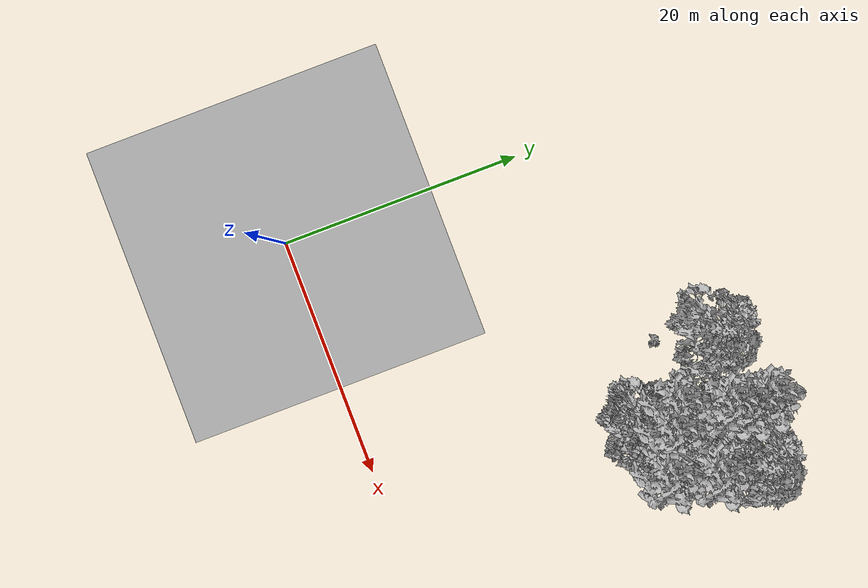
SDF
<sdf version="1.7">
 <world name="default">
  <model name="ground_plane">
   <static>1</static>
   <link name="link">
    <collision name="collision">
     <pose>-50 0 0 0 -0 0</pose>
     <geometry><plane><normal>0 0 1</normal><size>80 80</size></plane></geometry>
     <surface><contact><ode><min_depth>0.01</min_depth><max_vel>0</max_vel></ode></contact></surface>
    </collision>
    <visual name="grass">
     <cast_shadows>0</cast_shadows>
     <geometry>
      <mesh>
       <scale>0.46714285714285714 0.46714285714285714 0.1</scale>
       <uri>file://grass_plane/meshes/grass_plane.dae</uri>
      </mesh>
     </geometry>
    </visual>
   </link>
  </model>
  <model name="Tree 56">
   <static>1</static>
   <pose>26.8419181199542 24.100557964504972 0 1.57079 -0 0</pose>
   <link name="link">
    <collision name="collision">
     <geometry><mesh><scale>3.5 5 3.5</scale><uri>model://tree_9/meshes/tree_9.obj</uri></mesh></geometry>
    </collision>
    <visual name="visual">
     <geometry><mesh><scale>3.5 5 3.5</scale><uri>model://tree_9/meshes/tree_9.obj</uri></mesh></geometry>
    </visual>
   </link>
  </model>
  <model name="Tree 87">
   <static>1</static>
   <pose>22.78816601589846 21.27665080207681 0 1.57079 -0 0</pose>
   <link name="link">
    <collision name="collision">
     <geometry><mesh><scale>3.5 5 3.5</scale><uri>model://tree_2/meshes/tree_2.obj</uri></mesh></geometry>
    </collision>
    <visual name="visual">
     <geometry><mesh><scale>3.5 5 3.5</scale><uri>model://tree_2/meshes/tree_2.obj</uri></mesh></geometry>
    </visual>
   </link>
  </model>
  <model name="Tree 125">
   <static>1</static>
   <pose>23.563411487849734 25.7993419026497 0 1.57079 -0 0</pose>
   <link name="link">
    <collision name="collision">
     <geometry><mesh><scale>3.5 5 3.5</scale><uri>model://tree_2/meshes/tree_2.obj</uri></mesh></geometry>
    </collision>
    <visual name="visual">
     <geometry><mesh><scale>3.5 5 3.5</scale><uri>model://tree_2/meshes/tree_2.obj</uri></mesh></geometry>
    </visual>
   </link>
  </model>
  <model name="Tree 151">
   <static>1</static>
   <pose>28.45676120408301 28.09795732798304 0 1.57079 -0 0</pose>
   <link name="link">
    <collision name="collision">
     <geometry><mesh><scale>3.5 5 3.5</scale><uri>model://tree_2/meshes/tree_2.obj</uri></mesh></geometry>
    </collision>
    <visual name="visual">
     <geometry><mesh><scale>3.5 5 3.5</scale><uri>model://tree_2/meshes/tree_2.obj</uri></mesh></geometry>
    </visual>
   </link>
  </model>
  <model name="Tree 287">
   <static>1</static>
   <pose>18.098758817420496 28.498043613554245 0 1.57079 -0 0</pose>
   <link name="link">
    <collision name="collision">
     <geometry><mesh><scale>3.5 5 3.5</scale><uri>model://tree_2/meshes/tree_2.obj</uri></mesh></geometry>
    </collision>
    <visual name="visual">
     <geometry><mesh><scale>3.5 5 3.5</scale><uri>model://tree_2/meshes/tree_2.obj</uri></mesh></geometry>
    </visual>
   </link>
  </model>
  <model name="Tree 401">
   <static>1</static>
   <pose>25.771348527440637 20.819663443336125 0 1.57079 -0 0</pose>
   <link name="link">
    <collision name="collision">
     <geometry><mesh><scale>3.5 5 3.5</scale><uri>model://tree_9/meshes/tree_9.obj</uri></mesh></geometry>
    </collision>
    <visual name="visual">
     <geometry><mesh><scale>3.5 5 3.5</scale><uri>model://tree_9/meshes/tree_9.obj</uri></mesh></geometry>
    </visual>
   </link>
  </model>
  <model name="Tree 456">
   <static>1</static>
   <pose>21.3310710383384 23.11955921221177 0 1.57079 -0 0</pose>
   <link name="link">
    <collision name="collision">
     <geometry><mesh><scale>3.5 5 3.5</scale><uri>model://tree_9/meshes/tree_9.obj</uri></mesh></geometry>
    </collision>
    <visual name="visual">
     <geometry><mesh><scale>3.5 5 3.5</scale><uri>model://tree_9/meshes/tree_9.obj</uri></mesh></geometry>
    </visual>
   </link>
  </model>
  <model name="Tree 461">
   <static>1</static>
   <pose>26.076442171564878 25.972090173292486 0 1.57079 -0 0</pose>
   <link name="link">
    <collision name="collision">
     <geometry><mesh><scale>3.5 5 3.5</scale><uri>model://tree_2/meshes/tree_2.obj</uri></mesh></geometry>
    </collision>
    <visual name="visual">
     <geometry><mesh><scale>3.5 5 3.5</scale><uri>model://tree_2/meshes/tree_2.obj</uri></mesh></geometry>
    </visual>
   </link>
  </model>
  <model name="Tree 519">
   <static>1</static>
   <pose>23.09814041136307 27.744594299065383 0 1.57079 -0 0</pose>
   <link name="link">
    <collision name="collision">
     <geometry><mesh><scale>3.5 5 3.5</scale><uri>model://tree_9/meshes/tree_9.obj</uri></mesh></geometry>
    </collision>
    <visual name="visual">
     <geometry><mesh><scale>3.5 5 3.5</scale><uri>model://tree_9/meshes/tree_9.obj</uri></mesh></geometry>
    </visual>
   </link>
  </model>
  <model name="Tree 529">
   <static>1</static>
   <pose>22.986148293917573 22.13008729581454 0 1.57079 -0 0</pose>
   <link name="link">
    <collision name="collision">
     <geometry><mesh><scale>3.5 5 3.5</scale><uri>model://tree_9/meshes/tree_9.obj</uri></mesh></geometry>
    </collision>
    <visual name="visual">
     <geometry><mesh><scale>3.5 5 3.5</scale><uri>model://tree_9/meshes/tree_9.obj</uri></mesh></geometry>
    </visual>
   </link>
  </model>
  <model name="Tree 544">
   <static>1</static>
   <pose>23.008891143314855 29.243552274128973 0 1.57079 -0 0</pose>
   <link name="link">
    <collision name="collision">
     <geometry><mesh><scale>3.5 5 3.5</scale><uri>model://tree_9/meshes/tree_9.obj</uri></mesh></geometry>
    </collision>
    <visual name="visual">
     <geometry><mesh><scale>3.5 5 3.5</scale><uri>model://tree_9/meshes/tree_9.obj</uri></mesh></geometry>
    </visual>
   </link>
  </model>
  <model name="Tree 612">
   <static>1</static>
   <pose>22.989815960662696 21.089926849566154 0 1.57079 -0 0</pose>
   <link name="link">
    <collision name="collision">
     <geometry><mesh><scale>3.5 5 3.5</scale><uri>model://tree_2/meshes/tree_2.obj</uri></mesh></geometry>
    </collision>
    <visual name="visual">
     <geometry><mesh><scale>3.5 5 3.5</scale><uri>model://tree_2/meshes/tree_2.obj</uri></mesh></geometry>
    </visual>
   </link>
  </model>
  <model name="Tree 626">
   <static>1</static>
   <pose>22.577000726521923 26.557971485517143 0 1.57079 -0 0</pose>
   <link name="link">
    <collision name="collision">
     <geometry><mesh><scale>3.5 5 3.5</scale><uri>model://tree_9/meshes/tree_9.obj</uri></mesh></geometry>
    </collision>
    <visual name="visual">
     <geometry><mesh><scale>3.5 5 3.5</scale><uri>model://tree_9/meshes/tree_9.obj</uri></mesh></geometry>
    </visual>
   </link>
  </model>
  <model name="Bush 33">
   <static>1</static>
   <pose>28.90497481933609 22.65355632355721 0 1.57079 -0 0</pose>
   <link name="link">
    <collision name="collision">
     <geometry><mesh><scale>2 2 2</scale><uri>model://bush_2/meshes/bush_2.obj</uri></mesh></geometry>
     <surface><contact><collide_without_contact>false</collide_without_contact></contact></surface>
    </collision>
    <visual name="visual">
     <geometry><mesh><scale>2 2 2</scale><uri>model://bush_2/meshes/bush_2.obj</uri></mesh></geometry>
    </visual>
   </link>
  </model>
  <model name="Bush 46">
   <static>1</static>
   <pose>25.144883163469864 28.69816003222303 0 1.57079 -0 0</pose>
   <link name="link">
    <collision name="collision">
     <geometry><mesh><scale>2 2 2</scale><uri>model://bush_2/meshes/bush_2.obj</uri></mesh></geometry>
     <surface><contact><collide_without_contact>false</collide_without_contact></contact></surface>
    </collision>
    <visual name="visual">
     <geometry><mesh><scale>2 2 2</scale><uri>model://bush_2/meshes/bush_2.obj</uri></mesh></geometry>
    </visual>
   </link>
  </model>
  <model name="Bush 56">
   <static>1</static>
   <pose>18.145638563728816 28.71315515384714 0 1.57079 -0 0</pose>
   <link name="link">
    <collision name="collision">
     <geometry><mesh><scale>2 2 2</scale><uri>model://bush_4/meshes/bush_4.obj</uri></mesh></geometry>
     <surface><contact><collide_without_contact>false</collide_without_contact></contact></surface>
    </collision>
    <visual name="visual">
     <geometry><mesh><scale>2 2 2</scale><uri>model://bush_4/meshes/bush_4.obj</uri></mesh></geometry>
    </visual>
   </link>
  </model>
  <model name="Bush 205">
   <static>1</static>
   <pose>22.69298554017471 26.118050882055897 0 1.57079 -0 0</pose>
   <link name="link">
    <collision name="collision">
     <geometry><mesh><scale>2 2 2</scale><uri>model://bush_1/meshes/bush_1.obj</uri></mesh></geometry>
     <surface><contact><collide_without_contact>false</collide_without_contact></contact></surface>
    </collision>
    <visual name="visual">
     <geometry><mesh><scale>2 2 2</scale><uri>model://bush_1/meshes/bush_1.obj</uri></mesh></geometry>
    </visual>
   </link>
  </model>
  <model name="Bush 229">
   <static>1</static>
   <pose>18.05985762181374 25.2194641778963 0 1.57079 -0 0</pose>
   <link name="link">
    <collision name="collision">
     <geometry><mesh><scale>2 2 2</scale><uri>model://bush_2/meshes/bush_2.obj</uri></mesh></geometry>
     <surface><contact><collide_without_contact>false</collide_without_contact></contact></surface>
    </collision>
    <visual name="visual">
     <geometry><mesh><scale>2 2 2</scale><uri>model://bush_2/meshes/bush_2.obj</uri></mesh></geometry>
    </visual>
   </link>
  </model>
  <model name="Bush 340">
   <static>1</static>
   <pose>23.78911932566855 26.351078820995312 0 1.57079 -0 0</pose>
   <link name="link">
    <collision name="collision">
     <geometry><mesh><scale>2 2 2</scale><uri>model://bush_2/meshes/bush_2.obj</uri></mesh></geometry>
     <surface><contact><collide_without_contact>false</collide_without_contact></contact></surface>
    </collision>
    <visual name="visual">
     <geometry><mesh><scale>2 2 2</scale><uri>model://bush_2/meshes/bush_2.obj</uri></mesh></geometry>
    </visual>
   </link>
  </model>
  <model name="Bush 418">
   <static>1</static>
   <pose>24.527240530948987 26.264922154316068 0 1.57079 -0 0</pose>
   <link name="link">
    <collision name="collision">
     <geometry><mesh><scale>2 2 2</scale><uri>model://bush_1/meshes/bush_1.obj</uri></mesh></geometry>
     <surface><contact><collide_without_contact>false</collide_without_contact></contact></surface>
    </collision>
    <visual name="visual">
     <geometry><mesh><scale>2 2 2</scale><uri>model://bush_1/meshes/bush_1.obj</uri></mesh></geometry>
    </visual>
   </link>
  </model>
  <model name="Bush 461">
   <static>1</static>
   <pose>25.9117965677532 29.51334001571938 0 1.57079 -0 0</pose>
   <link name="link">
    <collision name="collision">
     <geometry><mesh><scale>2 2 2</scale><uri>model://bush_2/meshes/bush_2.obj</uri></mesh></geometry>
     <surface><contact><collide_without_contact>false</collide_without_contact></contact></surface>
    </collision>
    <visual name="visual">
     <geometry><mesh><scale>2 2 2</scale><uri>model://bush_2/meshes/bush_2.obj</uri></mesh></geometry>
    </visual>
   </link>
  </model>
  <model name="Bush 477">
   <static>1</static>
   <pose>28.94709681767661 22.886385303809924 0 1.57079 -0 0</pose>
   <link name="link">
    <collision name="collision">
     <geometry><mesh><scale>2 2 2</scale><uri>model://bush_1/meshes/bush_1.obj</uri></mesh></geometry>
     <surface><contact><collide_without_contact>false</collide_without_contact></contact></surface>
    </collision>
    <visual name="visual">
     <geometry><mesh><scale>2 2 2</scale><uri>model://bush_1/meshes/bush_1.obj</uri></mesh></geometry>
    </visual>
   </link>
  </model>
  <model name="Bush 557">
   <static>1</static>
   <pose>19.479274616982075 27.0691713883147 0 1.57079 -0 0</pose>
   <link name="link">
    <collision name="collision">
     <geometry><mesh><scale>2 2 2</scale><uri>model://bush_4/meshes/bush_4.obj</uri></mesh></geometry>
     <surface><contact><collide_without_contact>false</collide_without_contact></contact></surface>
    </collision>
    <visual name="visual">
     <geometry><mesh><scale>2 2 2</scale><uri>model://bush_4/meshes/bush_4.obj</uri></mesh></geometry>
    </visual>
   </link>
  </model>
 </world>
</sdf>
